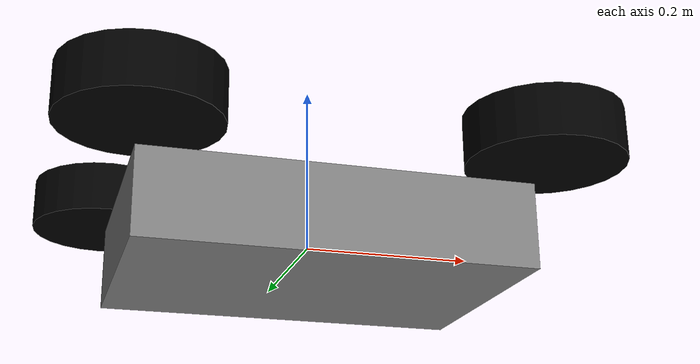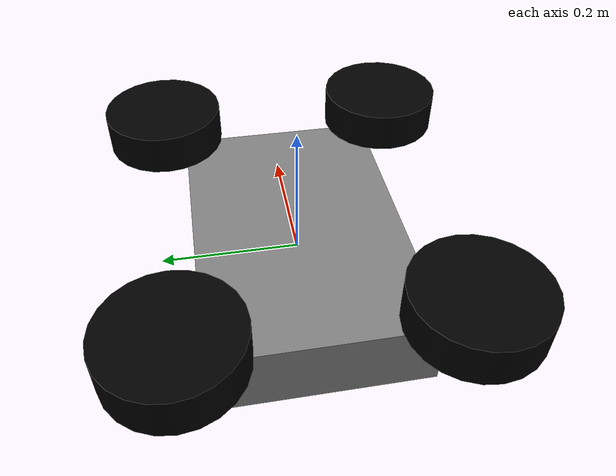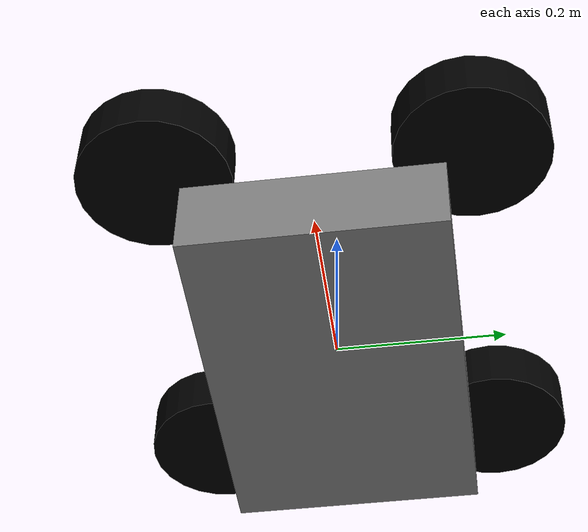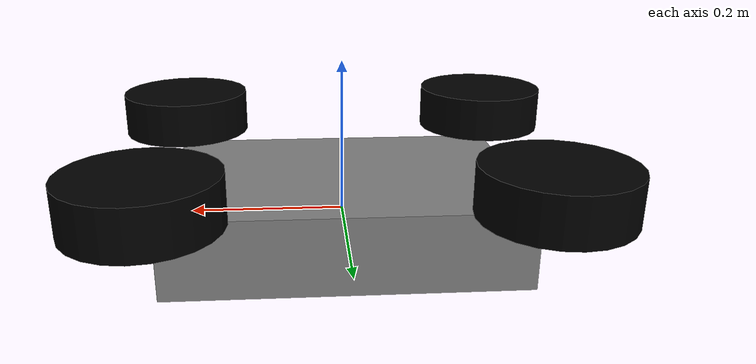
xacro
<?xml version="1.0"?>
<robot xmlns:xacro="http://www.ros.org/wiki/xacro">
  <xacro:include filename="common.xacro" />

  <!-- Base Frame -->
  <link name="base_frame">
    <inertial>
      <mass value="10.0"/>
      <origin xyz="0 0 ${base_height/2}" />
      <inertia ixx="0.1" ixy="0.0" ixz="0.0" iyy="0.1" iyz="0.0" izz="0.1" />
    </inertial>
    <visual>
      <geometry>
        <box size="${base_length} ${base_width} ${base_height}" />
      </geometry>
      <material name="gray"/>
    </visual>
    <collision>
      <geometry>
        <box size="${base_length} ${base_width} ${base_height}" />
      </geometry>
    </collision>
  </link>

  <!-- Wheels -->
  <xacro:wheel name="wheel_front_left" x="${base_length/2}" y="${wheel_separation/2}" />
  <xacro:wheel name="wheel_front_right" x="${base_length/2}" y="-${wheel_separation/2}" />
  <xacro:wheel name="wheel_back_left" x="-${base_length/2}" y="${wheel_separation/2}" />
  <xacro:wheel name="wheel_back_right" x="-${base_length/2}" y="-${wheel_separation/2}" />
</robot>

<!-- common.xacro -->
<robot xmlns:xacro="http://www.ros.org/wiki/xacro">

  <!-- Physical Constants -->
  <xacro:property name="wheel_radius" value="0.09" />
  <xacro:property name="wheel_width" value="0.06" />
  <xacro:property name="wheel_separation" value="0.36" />
  <xacro:property name="base_length" value="0.45" />
  <xacro:property name="base_width" value="0.30" />
  <xacro:property name="base_height" value="0.10" />
  <xacro:property name="pillar_radius" value="0.01" />
  <xacro:property name="pillar_height" value="0.13" />
  <xacro:property name="lidar_length" value="0.096" />
  <xacro:property name="lidar_width" value="0.070" />
  <xacro:property name="lidar_height" value="0.055" />
  <xacro:property name="floor2_thickness" value="0.01" />
  <xacro:property name="floor2_length" value="0.30" />
  <xacro:property name="floor2_width" value="0.20" />

    <!-- 색깔 정의 -->
  <material name="black">
    <color rgba="0.0 0.0 0.0 1.0"/>
  </material>
  <material name="red">
    <color rgba="0.8 0.0 0.0 1.0"/>
  </material>
  <material name="white">
    <color rgba="1.0 1.0 1.0 1.0"/>
  </material>
  <material name="gray">
    <color rgba="0.5 0.5 0.5 1.0"/>
  </material>
  <material name="blue">
    <color rgba="0.0 0.0 0.8 1.0"/>
  </material>

  <!-- Wheel Macro -->
  <xacro:macro name="wheel" params="name x y">
    <link name="${name}">
      <visual>
        <geometry>
          <cylinder radius="${wheel_radius}" length="${wheel_width}" />
        </geometry>
        <material name="black"/>
      </visual>
      <collision>
        <geometry>
          <cylinder radius="${wheel_radius}" length="${wheel_width}" />
        </geometry>
      </collision>
      <inertial>
        <mass value="1.0"/>
        <origin xyz="0 0 0" />
        <inertia ixx="0.001" ixy="0.0" ixz="0.0" iyy="0.001" iyz="0.0" izz="0.001" />
      </inertial>
    </link>
    <joint name="${name}_joint" type="continuous">
      <parent link="base_frame"/>
      <child link="${name}"/>
      <origin xyz="${x} ${y} ${wheel_radius}" rpy="0 0 0" />
      <axis xyz="0 1 0" />
    </joint>
  </xacro:macro>

  <!-- Pillar Macro -->
  <xacro:macro name="pillar" params="name x y">
    <link name="${name}">
      <visual>
        <geometry>
          <cylinder radius="${pillar_radius}" length="${pillar_height}" />
        </geometry>
        <material name="gray"/>
      </visual>
      <collision>
        <geometry>
          <cylinder radius="${pillar_radius}" length="${pillar_height}" />
        </geometry>
      </collision>
    </link>
    <joint name="${name}_joint" type="fixed">
      <parent link="base_frame"/>
      <child link="${name}"/>
      <origin xyz="${x} ${y} ${base_height}" rpy="0 0 0" />
    </joint>
  </xacro:macro>

</robot>
